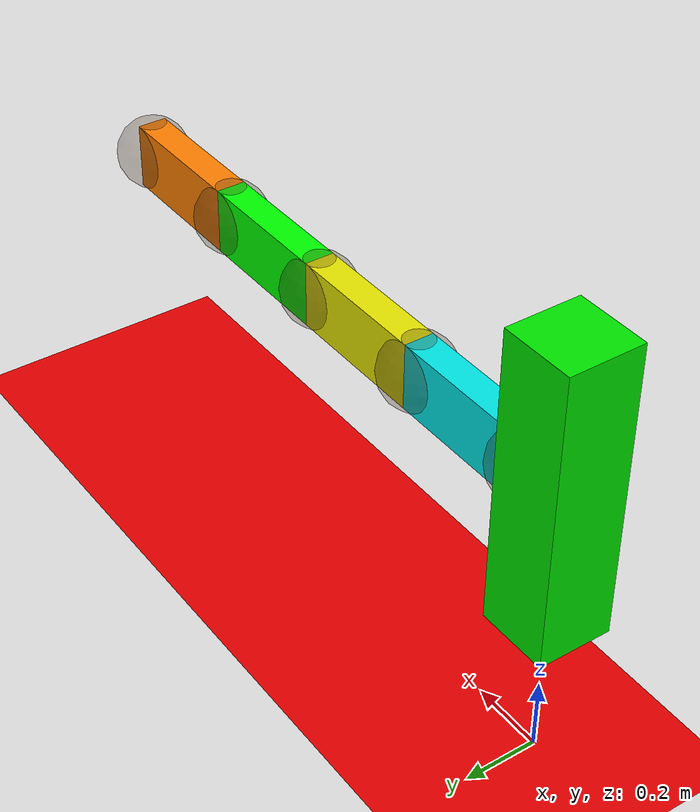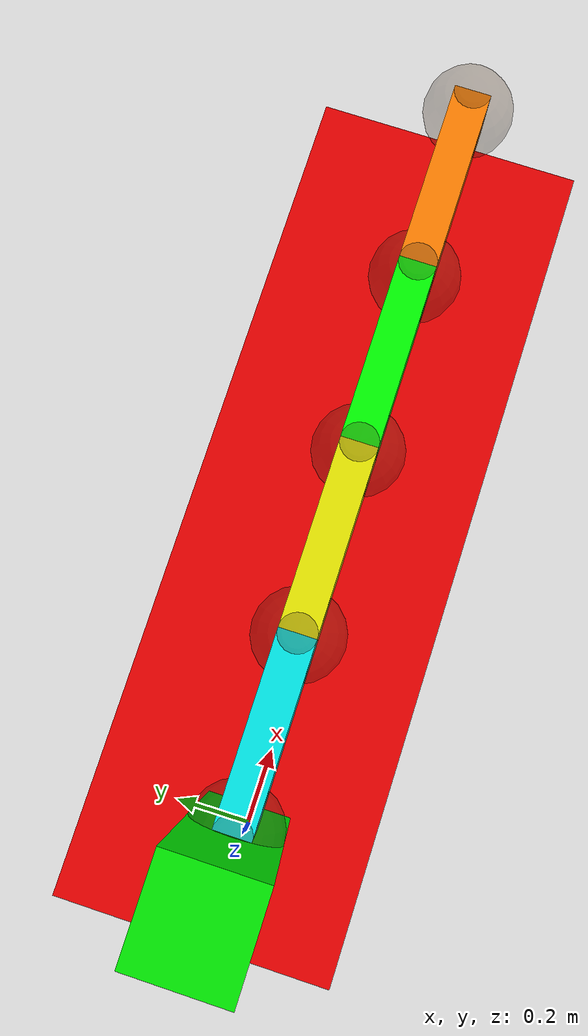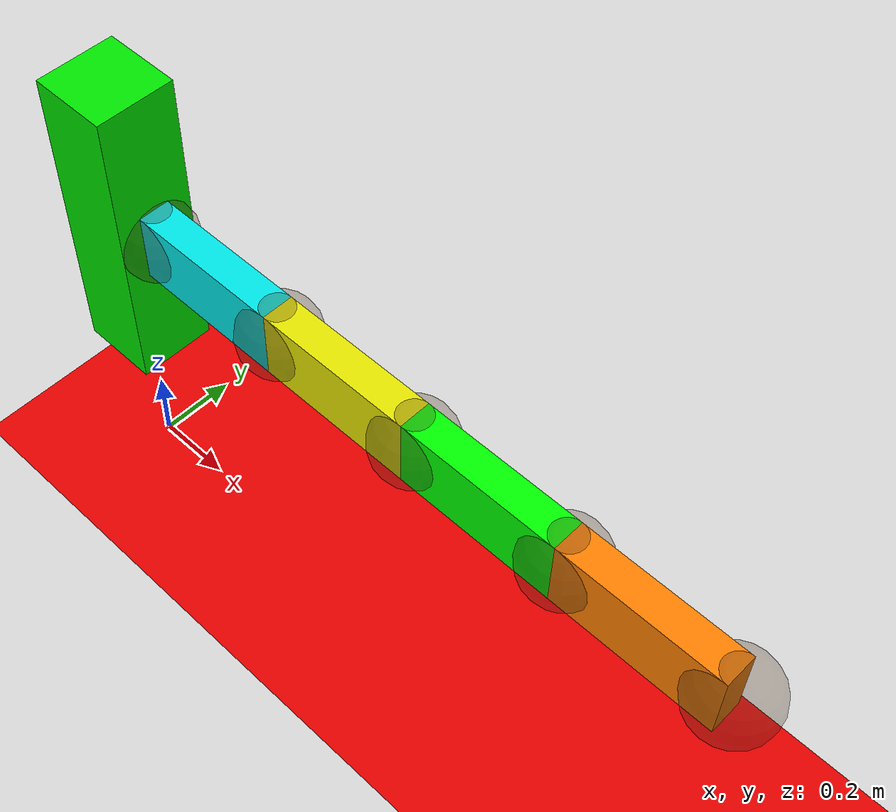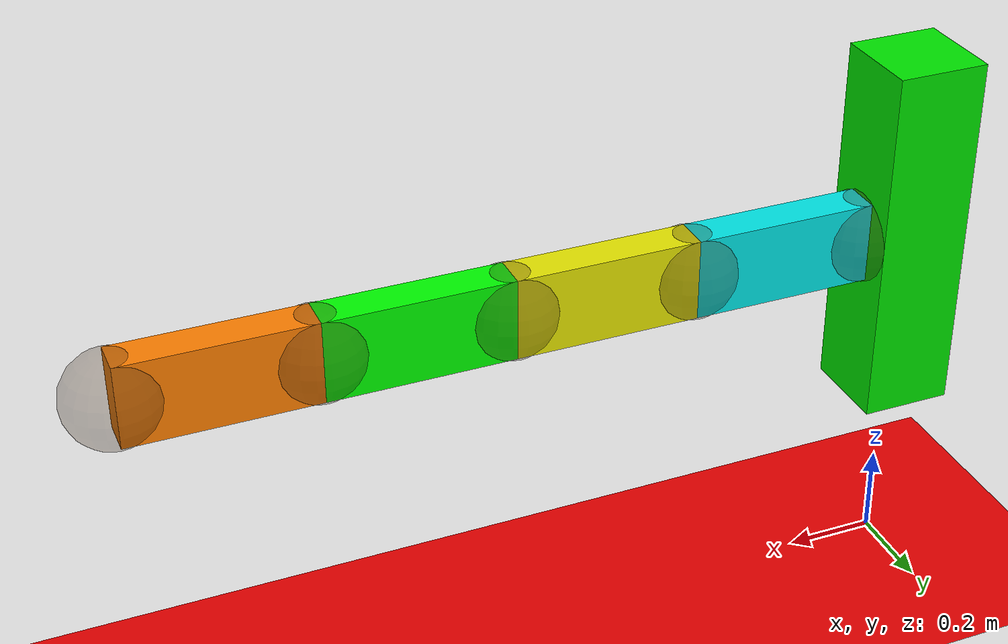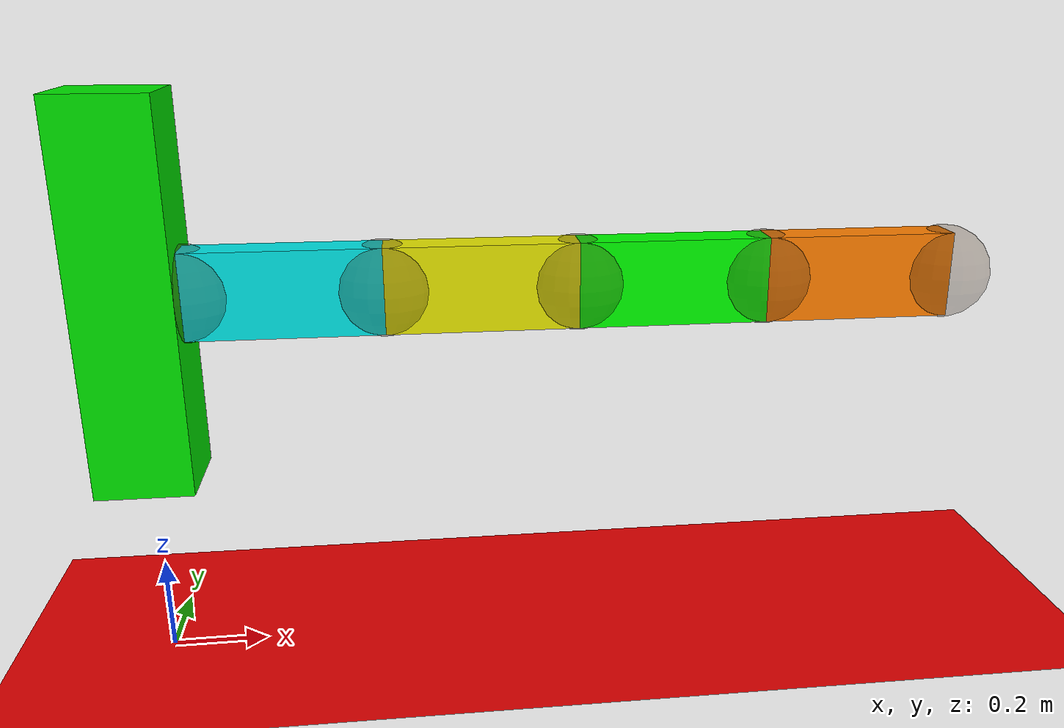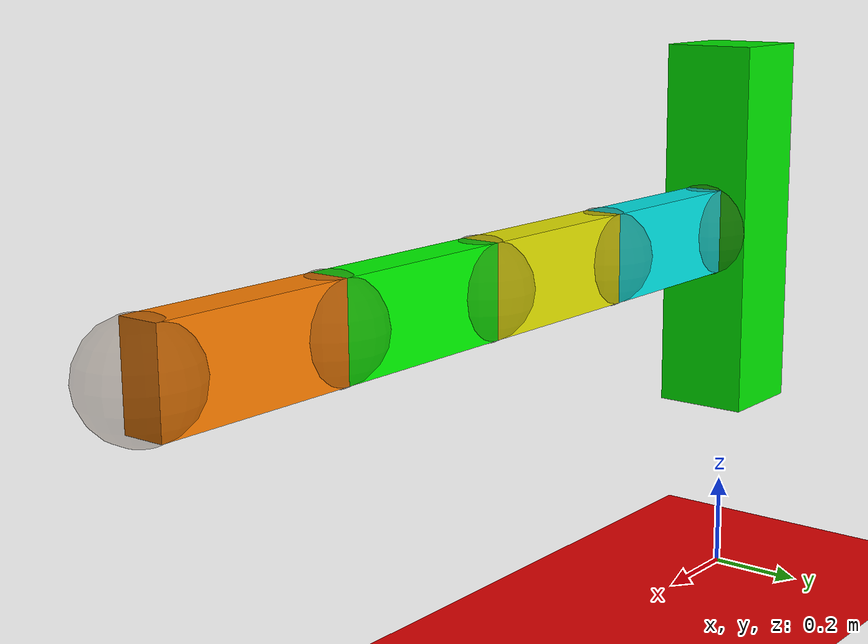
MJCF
<mujoco>
	<option timestep="0.0001" integrator="RK4" gravity="0 0 0">
		<flag sensornoise="disable" energy= "enable" contact= "disable"/>
	</option>

	<worldbody>
    <light diffuse="1 1 1" pos="0 0 50" dir="0 0 -1"/>
		<geom type="plane" size="10 10 10" rgba=".9 0 0 1"/>
		<body name= "arm_link_0" pos="0 0 0.8" euler="0 0 0">
			<joint name="arm_joint_1" type="free"/>
			<geom type="box" size="0.1 0.1 0.4" rgba="0 .9 0 1"/>
			<inertial  pos="0 0 0" mass="10" diaginertia="0.5667 0.5667 0.0667" />
			<site name="sensor_at_COM" pos="0 0 0" euler="0 0 0" size=".1" type="sphere" rgba="0.3 0.2 0.1 0.3"/>
			<body name= "arm_link_1" pos="0.3 0 0" euler="0 0 0">
				<joint name="arm_joint_2" type="hinge" axis="0 0 1" pos="-0.2 0 0"/>
				<geom type="box" size="0.2 0.04 0.09" rgba="0 .9 .9 1"/>
				<inertial  pos="0 0 0" mass="2" diaginertia="0.0065 0.0321 0.0277" />
				<site name="sensor_at_1st_revjoint" pos="-0.2 0 0" euler="0 0 0" size=".1" type="sphere" rgba="0.3 0.2 0.1 0.3"/>
				<body name= "arm_link_2" pos="0.4 0 0" euler="0 0 0">
					<joint name="arm_joint_3" type="hinge" axis="0 0 1" pos="-0.2 0 0"/>
					<geom type="box" size="0.2 0.04 0.09" rgba=".9 .9 0 1"/>
					<inertial  pos="0 0 0" mass="2" diaginertia="0.0065 0.0321 0.0277" />
					<site name="sensor_at_2nd_revjoint" pos="-0.2 0 0" euler="0 0 0" size=".1" type="sphere" rgba="0.3 0.2 0.1 0.3"/>
					<body name= "arm_link_3" pos="0.4 0 0" euler="0 0 0">
						<joint name="arm_joint_4" type="hinge" axis="0 0 1" pos="-0.2 0 0"/>
						<geom type="box" size="0.2 0.04 0.09" rgba="0 1 0 1"/>
						<inertial  pos="0 0 0" mass="2" diaginertia="0.0065 0.0321 0.0277" />
						<site name="sensor_at_3rd_revjoint" pos="-0.2 0 0" euler="0 0 0" size=".1" type="sphere" rgba="0.3 0.2 0.1 0.3"/>
						<body name= "arm_link_4" pos="0.4 0 0" euler="0 0 0">
							<joint name="arm_joint_5" type="hinge" axis="0 0 1" pos="-0.2 0 0"/>
							<geom type="box" size="0.2 0.04 0.09" rgba="1 0.5 0 1"/>
							<inertial  pos="0 0 0" mass="2" diaginertia="0.0065 0.0321 0.0277" />
							<site name="sensor_at_4th_revjoint" pos="-0.2 0 0" euler="0 0 0" size=".1" type="sphere" rgba="0.3 0.2 0.1 0.3"/>
							<site name="endeff" pos="0.2 0 0" euler="0 0 0" size=".1" type="sphere" rgba="0.3 0.2 0.1 0.3"/>
						</body>
					</body>
				</body>
			</body>
		</body>
	</worldbody>
	<actuator>
		<motor joint="arm_joint_2" name="torque1" gear="1" ctrllimited="true" ctrlrange="-10 10" />
		<motor joint="arm_joint_3" name="torque2" gear="1" ctrllimited="true" ctrlrange="-10 10" />
		<motor joint="arm_joint_4" name="torque3" gear="1" ctrllimited="true" ctrlrange="-10 10" />
		<motor joint="arm_joint_5" name="torque4" gear="1" ctrllimited="true" ctrlrange="-10 10" />
	</actuator>
	<sensor>

        <torque name="torque_sensor_at_1st_revjoint" site="sensor_at_1st_revjoint"/>
		<torque name="torque_sensor_at_2nd_revjoint" site="sensor_at_2nd_revjoint"/>
		<torque name="torque_sensor_at_3rd_revjoint" site="sensor_at_3rd_revjoint"/>
		<torque name="torque_sensor_at_4th_revjoint" site="sensor_at_4th_revjoint"/>

		<jointpos name="relative_joint_angle_sensor_at_1st_revjoint" joint="arm_joint_2"/>
		<jointpos name="relative_joint_angle_sensor_at_2nd_revjoint" joint="arm_joint_3"/>
		<jointpos name="relative_joint_angle_sensor_at_3rd_revjoint" joint="arm_joint_4"/>
		<jointpos name="relative_joint_angle_sensor_at_4th_revjoint" joint="arm_joint_5"/>

		<jointvel name="relative_joint_velocity_sensor_at_1st_revjoint" joint="arm_joint_2"/>
		<jointvel name="relative_joint_velocity_sensor_at_2nd_revjoint" joint="arm_joint_3"/>
		<jointvel name="relative_joint_velocity_sensor_at_3rd_revjoint" joint="arm_joint_4"/>
		<jointvel name="relative_joint_velocity_sensor_at_4th_revjoint" joint="arm_joint_5"/>

		<framepos objtype="site" objname="sensor_at_COM"/>
		<framelinvel objtype="site" objname="sensor_at_COM"/>
		<frameangvel objtype="site" objname="sensor_at_COM"/>
		<framequat objtype="site" objname="sensor_at_COM"/>

        <framepos objtype="site" objname="endeff"/>

	</sensor>
</mujoco>
